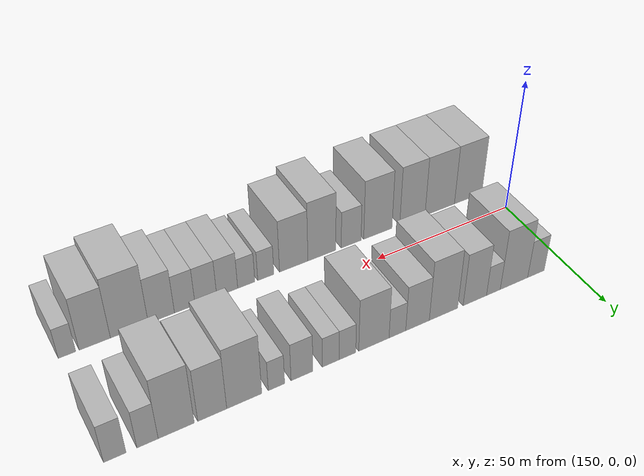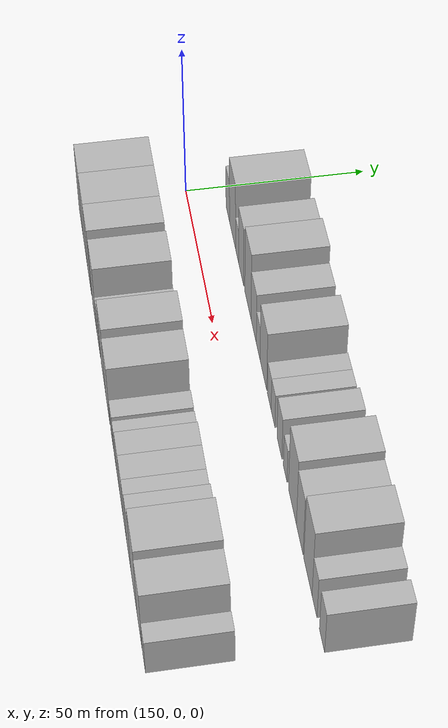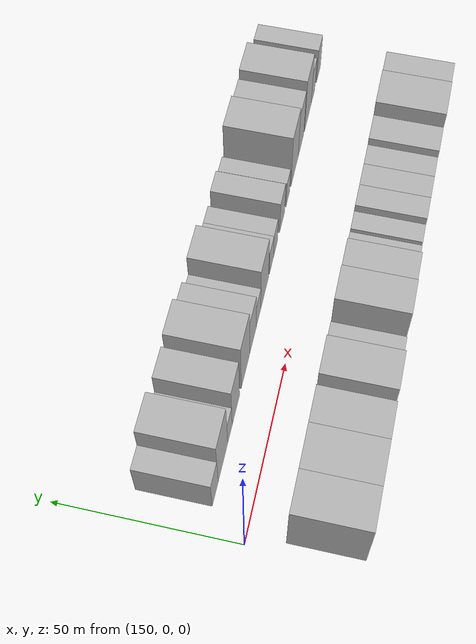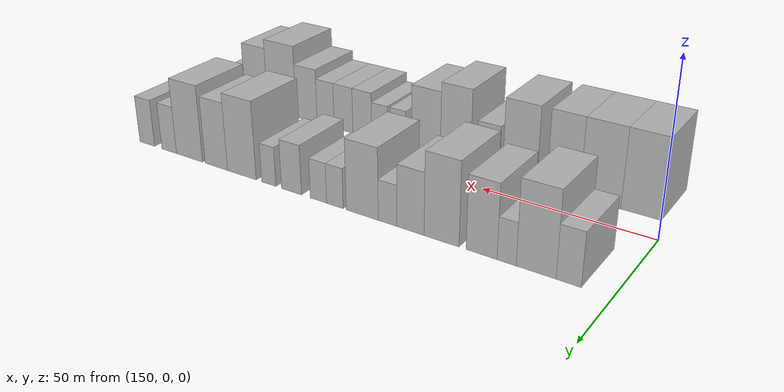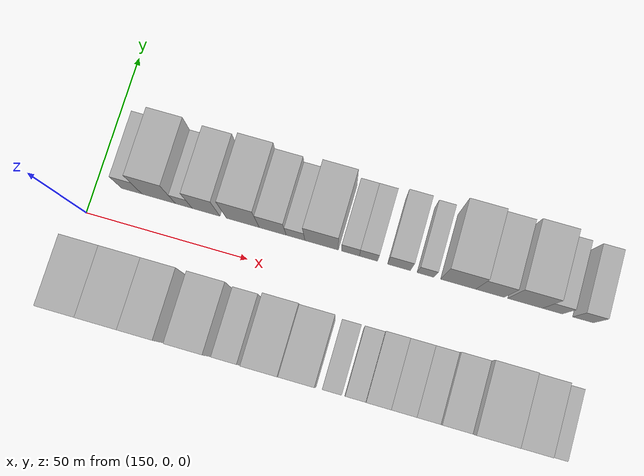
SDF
<sdf version="1.6">
 <world name="default">
  <model name="building_17">
   <static>1</static>
   <pose>160.9357 20.0000 0 0.000000 0.000000 1.570796</pose>
   <link name="link">
    <pose>0 0 7.50 0 0 0</pose>
    <collision name="collision"><geometry><box><size>20.0000 6.4339 15.0000</size></box></geometry></collision>
    <visual name="visual">
     <cast_shadows>0</cast_shadows>
     <geometry><box><size>20.0000 6.4339 15.0000</size></box></geometry>
     <material>
      <script>
       <uri>model://HANNAS_wall/materials/scripts</uri>
       <uri>model://HANNAS_wall/materials/textures</uri>
       <name>vrc/HANNAS_wall</name>
      </script>
     </material>
    </visual>
   </link>
  </model>
  <model name="building_18">
   <static>1</static>
   <pose>169.3864 20.0000 0 0.000000 0.000000 1.570796</pose>
   <link name="link">
    <pose>0 0 12.00 0 0 0</pose>
    <collision name="collision"><geometry><box><size>20.0000 10.4674 24.0000</size></box></geometry></collision>
    <visual name="visual">
     <cast_shadows>0</cast_shadows>
     <geometry><box><size>20.0000 10.4674 24.0000</size></box></geometry>
     <material>
      <script>
       <uri>model://HANNAS_wall/materials/scripts</uri>
       <uri>model://HANNAS_wall/materials/textures</uri>
       <name>vrc/HANNAS_wall</name>
      </script>
     </material>
    </visual>
   </link>
  </model>
  <model name="building_19">
   <static>1</static>
   <pose>177.2051 20.0000 0 0.000000 0.000000 1.570796</pose>
   <link name="link">
    <pose>0 0 6.00 0 0 0</pose>
    <collision name="collision"><geometry><box><size>20.0000 5.1700 12.0000</size></box></geometry></collision>
    <visual name="visual">
     <cast_shadows>0</cast_shadows>
     <geometry><box><size>20.0000 5.1700 12.0000</size></box></geometry>
     <material>
      <script>
       <uri>model://HANNAS_wall/materials/scripts</uri>
       <uri>model://HANNAS_wall/materials/textures</uri>
       <name>vrc/HANNAS_wall</name>
      </script>
     </material>
    </visual>
   </link>
  </model>
  <model name="building_20">
   <static>1</static>
   <pose>184.1034 20.0000 0 0.000000 0.000000 1.570796</pose>
   <link name="link">
    <pose>0 0 10.50 0 0 0</pose>
    <collision name="collision"><geometry><box><size>20.0000 8.6266 21.0000</size></box></geometry></collision>
    <visual name="visual">
     <cast_shadows>0</cast_shadows>
     <geometry><box><size>20.0000 8.6266 21.0000</size></box></geometry>
     <material>
      <script>
       <uri>model://HANNAS_wall/materials/scripts</uri>
       <uri>model://HANNAS_wall/materials/textures</uri>
       <name>vrc/HANNAS_wall</name>
      </script>
     </material>
    </visual>
   </link>
  </model>
  <model name="building_21">
   <static>1</static>
   <pose>195.5062 20.0000 0 0.000000 0.000000 1.570796</pose>
   <link name="link">
    <pose>0 0 12.00 0 0 0</pose>
    <collision name="collision"><geometry><box><size>20.0000 10.1790 24.0000</size></box></geometry></collision>
    <visual name="visual">
     <cast_shadows>0</cast_shadows>
     <geometry><box><size>20.0000 10.1790 24.0000</size></box></geometry>
     <material>
      <script>
       <uri>model://HANNAS_wall/materials/scripts</uri>
       <uri>model://HANNAS_wall/materials/textures</uri>
       <name>vrc/HANNAS_wall</name>
      </script>
     </material>
    </visual>
   </link>
  </model>
  <model name="building_22">
   <static>1</static>
   <pose>204.7365 20.0000 0 0.000000 0.000000 1.570796</pose>
   <link name="link">
    <pose>0 0 9.00 0 0 0</pose>
    <collision name="collision"><geometry><box><size>20.0000 8.2816 18.0000</size></box></geometry></collision>
    <visual name="visual">
     <cast_shadows>0</cast_shadows>
     <geometry><box><size>20.0000 8.2816 18.0000</size></box></geometry>
     <material>
      <script>
       <uri>model://HANNAS_wall/materials/scripts</uri>
       <uri>model://HANNAS_wall/materials/textures</uri>
       <name>vrc/HANNAS_wall</name>
      </script>
     </material>
    </visual>
   </link>
  </model>
  <model name="building_23">
   <static>1</static>
   <pose>211.7590 20.0000 0 0.000000 0.000000 1.570796</pose>
   <link name="link">
    <pose>0 0 6.00 0 0 0</pose>
    <collision name="collision"><geometry><box><size>20.0000 5.7634 12.0000</size></box></geometry></collision>
    <visual name="visual">
     <cast_shadows>0</cast_shadows>
     <geometry><box><size>20.0000 5.7634 12.0000</size></box></geometry>
     <material>
      <script>
       <uri>model://HANNAS_wall/materials/scripts</uri>
       <uri>model://HANNAS_wall/materials/textures</uri>
       <name>vrc/HANNAS_wall</name>
      </script>
     </material>
    </visual>
   </link>
  </model>
  <model name="building_24">
   <static>1</static>
   <pose>219.7592 20.0000 0 0.000000 0.000000 1.570796</pose>
   <link name="link">
    <pose>0 0 10.50 0 0 0</pose>
    <collision name="collision"><geometry><box><size>20.0000 10.2370 21.0000</size></box></geometry></collision>
    <visual name="visual">
     <cast_shadows>0</cast_shadows>
     <geometry><box><size>20.0000 10.2370 21.0000</size></box></geometry>
     <material>
      <script>
       <uri>model://HANNAS_wall/materials/scripts</uri>
       <uri>model://HANNAS_wall/materials/textures</uri>
       <name>vrc/HANNAS_wall</name>
      </script>
     </material>
    </visual>
   </link>
  </model>
  <model name="building_25">
   <static>1</static>
   <pose>228.6135 20.0000 0 0.000000 0.000000 1.570796</pose>
   <link name="link">
    <pose>0 0 6.00 0 0 0</pose>
    <collision name="collision"><geometry><box><size>20.0000 5.4715 12.0000</size></box></geometry></collision>
    <visual name="visual">
     <cast_shadows>0</cast_shadows>
     <geometry><box><size>20.0000 5.4715 12.0000</size></box></geometry>
     <material>
      <script>
       <uri>model://HANNAS_wall/materials/scripts</uri>
       <uri>model://HANNAS_wall/materials/textures</uri>
       <name>vrc/HANNAS_wall</name>
      </script>
     </material>
    </visual>
   </link>
  </model>
  <model name="building_26">
   <static>1</static>
   <pose>234.1191 20.0000 0 0.000000 0.000000 1.570796</pose>
   <link name="link">
    <pose>0 0 6.00 0 0 0</pose>
    <collision name="collision"><geometry><box><size>20.0000 5.5398 12.0000</size></box></geometry></collision>
    <visual name="visual">
     <cast_shadows>0</cast_shadows>
     <geometry><box><size>20.0000 5.5398 12.0000</size></box></geometry>
     <material>
      <script>
       <uri>model://HANNAS_wall/materials/scripts</uri>
       <uri>model://HANNAS_wall/materials/textures</uri>
       <name>vrc/HANNAS_wall</name>
      </script>
     </material>
    </visual>
   </link>
  </model>
  <model name="building_27">
   <static>1</static>
   <pose>243.3806 20.0000 0 0.000000 0.000000 1.570796</pose>
   <link name="link">
    <pose>0 0 7.50 0 0 0</pose>
    <collision name="collision"><geometry><box><size>20.0000 6.9831 15.0000</size></box></geometry></collision>
    <visual name="visual">
     <cast_shadows>0</cast_shadows>
     <geometry><box><size>20.0000 6.9831 15.0000</size></box></geometry>
     <material>
      <script>
       <uri>model://HANNAS_wall/materials/scripts</uri>
       <uri>model://HANNAS_wall/materials/textures</uri>
       <name>vrc/HANNAS_wall</name>
      </script>
     </material>
    </visual>
   </link>
  </model>
  <model name="building_28">
   <static>1</static>
   <pose>251.4328 20.0000 0 0.000000 0.000000 1.570796</pose>
   <link name="link">
    <pose>0 0 6.00 0 0 0</pose>
    <collision name="collision"><geometry><box><size>20.0000 5.1213 12.0000</size></box></geometry></collision>
    <visual name="visual">
     <cast_shadows>0</cast_shadows>
     <geometry><box><size>20.0000 5.1213 12.0000</size></box></geometry>
     <material>
      <script>
       <uri>model://HANNAS_wall/materials/scripts</uri>
       <uri>model://HANNAS_wall/materials/textures</uri>
       <name>vrc/HANNAS_wall</name>
      </script>
     </material>
    </visual>
   </link>
  </model>
  <model name="building_29">
   <static>1</static>
   <pose>261.3288 20.0000 0 0.000000 0.000000 1.570796</pose>
   <link name="link">
    <pose>0 0 12.00 0 0 0</pose>
    <collision name="collision"><geometry><box><size>20.0000 10.6708 24.0000</size></box></geometry></collision>
    <visual name="visual">
     <cast_shadows>0</cast_shadows>
     <geometry><box><size>20.0000 10.6708 24.0000</size></box></geometry>
     <material>
      <script>
       <uri>model://HANNAS_wall/materials/scripts</uri>
       <uri>model://HANNAS_wall/materials/textures</uri>
       <name>vrc/HANNAS_wall</name>
      </script>
     </material>
    </visual>
   </link>
  </model>
  <model name="building_30">
   <static>1</static>
   <pose>270.9674 20.0000 0 0.000000 0.000000 1.570796</pose>
   <link name="link">
    <pose>0 0 10.50 0 0 0</pose>
    <collision name="collision"><geometry><box><size>20.0000 8.6062 21.0000</size></box></geometry></collision>
    <visual name="visual">
     <cast_shadows>0</cast_shadows>
     <geometry><box><size>20.0000 8.6062 21.0000</size></box></geometry>
     <material>
      <script>
       <uri>model://HANNAS_wall/materials/scripts</uri>
       <uri>model://HANNAS_wall/materials/textures</uri>
       <name>vrc/HANNAS_wall</name>
      </script>
     </material>
    </visual>
   </link>
  </model>
  <model name="building_31">
   <static>1</static>
   <pose>281.4899 20.0000 0 0.000000 0.000000 1.570796</pose>
   <link name="link">
    <pose>0 0 12.00 0 0 0</pose>
    <collision name="collision"><geometry><box><size>20.0000 10.4389 24.0000</size></box></geometry></collision>
    <visual name="visual">
     <cast_shadows>0</cast_shadows>
     <geometry><box><size>20.0000 10.4389 24.0000</size></box></geometry>
     <material>
      <script>
       <uri>model://HANNAS_wall/materials/scripts</uri>
       <uri>model://HANNAS_wall/materials/textures</uri>
       <name>vrc/HANNAS_wall</name>
      </script>
     </material>
    </visual>
   </link>
  </model>
  <model name="building_32">
   <static>1</static>
   <pose>289.7101 20.0000 0 0.000000 0.000000 1.570796</pose>
   <link name="link">
    <pose>0 0 7.50 0 0 0</pose>
    <collision name="collision"><geometry><box><size>20.0000 6.0015 15.0000</size></box></geometry></collision>
    <visual name="visual">
     <cast_shadows>0</cast_shadows>
     <geometry><box><size>20.0000 6.0015 15.0000</size></box></geometry>
     <material>
      <script>
       <uri>model://HANNAS_wall/materials/scripts</uri>
       <uri>model://HANNAS_wall/materials/textures</uri>
       <name>vrc/HANNAS_wall</name>
      </script>
     </material>
    </visual>
   </link>
  </model>
  <model name="building_33">
   <static>1</static>
   <pose>298.8241 20.0000 0 0.000000 0.000000 1.570796</pose>
   <link name="link">
    <pose>0 0 7.50 0 0 0</pose>
    <collision name="collision"><geometry><box><size>20.0000 6.2265 15.0000</size></box></geometry></collision>
    <visual name="visual">
     <cast_shadows>0</cast_shadows>
     <geometry><box><size>20.0000 6.2265 15.0000</size></box></geometry>
     <material>
      <script>
       <uri>model://HANNAS_wall/materials/scripts</uri>
       <uri>model://HANNAS_wall/materials/textures</uri>
       <name>vrc/HANNAS_wall</name>
      </script>
     </material>
    </visual>
   </link>
  </model>
  <model name="building_48">
   <static>1</static>
   <pose>158.2835 -20.0000 0 0.000000 0.000000 1.570796</pose>
   <link name="link">
    <pose>0 0 12.00 0 0 0</pose>
    <collision name="collision"><geometry><box><size>20.0000 11.2238 24.0000</size></box></geometry></collision>
    <visual name="visual">
     <cast_shadows>0</cast_shadows>
     <geometry><box><size>20.0000 11.2238 24.0000</size></box></geometry>
     <material>
      <script>
       <uri>model://HANNAS_wall/materials/scripts</uri>
       <uri>model://HANNAS_wall/materials/textures</uri>
       <name>vrc/HANNAS_wall</name>
      </script>
     </material>
    </visual>
   </link>
  </model>
  <model name="building_49">
   <static>1</static>
   <pose>169.7892 -20.0000 0 0.000000 0.000000 1.570796</pose>
   <link name="link">
    <pose>0 0 12.00 0 0 0</pose>
    <collision name="collision"><geometry><box><size>20.0000 11.7876 24.0000</size></box></geometry></collision>
    <visual name="visual">
     <cast_shadows>0</cast_shadows>
     <geometry><box><size>20.0000 11.7876 24.0000</size></box></geometry>
     <material>
      <script>
       <uri>model://HANNAS_wall/materials/scripts</uri>
       <uri>model://HANNAS_wall/materials/textures</uri>
       <name>vrc/HANNAS_wall</name>
      </script>
     </material>
    </visual>
   </link>
  </model>
  <model name="building_50">
   <static>1</static>
   <pose>180.6211 -20.0000 0 0.000000 0.000000 1.570796</pose>
   <link name="link">
    <pose>0 0 12.00 0 0 0</pose>
    <collision name="collision"><geometry><box><size>20.0000 9.8762 24.0000</size></box></geometry></collision>
    <visual name="visual">
     <cast_shadows>0</cast_shadows>
     <geometry><box><size>20.0000 9.8762 24.0000</size></box></geometry>
     <material>
      <script>
       <uri>model://HANNAS_wall/materials/scripts</uri>
       <uri>model://HANNAS_wall/materials/textures</uri>
       <name>vrc/HANNAS_wall</name>
      </script>
     </material>
    </visual>
   </link>
  </model>
  <model name="building_51">
   <static>1</static>
   <pose>193.9153 -20.0000 0 0.000000 0.000000 1.570796</pose>
   <link name="link">
    <pose>0 0 12.00 0 0 0</pose>
    <collision name="collision"><geometry><box><size>20.0000 10.7122 24.0000</size></box></geometry></collision>
    <visual name="visual">
     <cast_shadows>0</cast_shadows>
     <geometry><box><size>20.0000 10.7122 24.0000</size></box></geometry>
     <material>
      <script>
       <uri>model://HANNAS_wall/materials/scripts</uri>
       <uri>model://HANNAS_wall/materials/textures</uri>
       <name>vrc/HANNAS_wall</name>
      </script>
     </material>
    </visual>
   </link>
  </model>
  <model name="building_52">
   <static>1</static>
   <pose>203.9388 -20.0000 0 0.000000 0.000000 1.570796</pose>
   <link name="link">
    <pose>0 0 7.50 0 0 0</pose>
    <collision name="collision"><geometry><box><size>20.0000 7.3349 15.0000</size></box></geometry></collision>
    <visual name="visual">
     <cast_shadows>0</cast_shadows>
     <geometry><box><size>20.0000 7.3349 15.0000</size></box></geometry>
     <material>
      <script>
       <uri>model://HANNAS_wall/materials/scripts</uri>
       <uri>model://HANNAS_wall/materials/textures</uri>
       <name>vrc/HANNAS_wall</name>
      </script>
     </material>
    </visual>
   </link>
  </model>
  <model name="building_53">
   <static>1</static>
   <pose>214.6639 -20.0000 0 0.000000 0.000000 1.570796</pose>
   <link name="link">
    <pose>0 0 12.00 0 0 0</pose>
    <collision name="collision"><geometry><box><size>20.0000 10.1152 24.0000</size></box></geometry></collision>
    <visual name="visual">
     <cast_shadows>0</cast_shadows>
     <geometry><box><size>20.0000 10.1152 24.0000</size></box></geometry>
     <material>
      <script>
       <uri>model://HANNAS_wall/materials/scripts</uri>
       <uri>model://HANNAS_wall/materials/textures</uri>
       <name>vrc/HANNAS_wall</name>
      </script>
     </material>
    </visual>
   </link>
  </model>
  <model name="building_54">
   <static>1</static>
   <pose>224.7370 -20.0000 0 0.000000 0.000000 1.570796</pose>
   <link name="link">
    <pose>0 0 10.50 0 0 0</pose>
    <collision name="collision"><geometry><box><size>20.0000 10.0311 21.0000</size></box></geometry></collision>
    <visual name="visual">
     <cast_shadows>0</cast_shadows>
     <geometry><box><size>20.0000 10.0311 21.0000</size></box></geometry>
     <material>
      <script>
       <uri>model://HANNAS_wall/materials/scripts</uri>
       <uri>model://HANNAS_wall/materials/textures</uri>
       <name>vrc/HANNAS_wall</name>
      </script>
     </material>
    </visual>
   </link>
  </model>
  <model name="building_55">
   <static>1</static>
   <pose>234.5355 -20.0000 0 0.000000 0.000000 1.570796</pose>
   <link name="link">
    <pose>0 0 6.00 0 0 0</pose>
    <collision name="collision"><geometry><box><size>20.0000 5.5658 12.0000</size></box></geometry></collision>
    <visual name="visual">
     <cast_shadows>0</cast_shadows>
     <geometry><box><size>20.0000 5.5658 12.0000</size></box></geometry>
     <material>
      <script>
       <uri>model://HANNAS_wall/materials/scripts</uri>
       <uri>model://HANNAS_wall/materials/textures</uri>
       <name>vrc/HANNAS_wall</name>
      </script>
     </material>
    </visual>
   </link>
  </model>
  <model name="building_56">
   <static>1</static>
   <pose>241.2391 -20.0000 0 0.000000 0.000000 1.570796</pose>
   <link name="link">
    <pose>0 0 6.00 0 0 0</pose>
    <collision name="collision"><geometry><box><size>20.0000 5.8416 12.0000</size></box></geometry></collision>
    <visual name="visual">
     <cast_shadows>0</cast_shadows>
     <geometry><box><size>20.0000 5.8416 12.0000</size></box></geometry>
     <material>
      <script>
       <uri>model://HANNAS_wall/materials/scripts</uri>
       <uri>model://HANNAS_wall/materials/textures</uri>
       <name>vrc/HANNAS_wall</name>
      </script>
     </material>
    </visual>
   </link>
  </model>
  <model name="building_57">
   <static>1</static>
   <pose>247.6698 -20.0000 0 0.000000 0.000000 1.570796</pose>
   <link name="link">
    <pose>0 0 7.50 0 0 0</pose>
    <collision name="collision"><geometry><box><size>20.0000 7.0196 15.0000</size></box></geometry></collision>
    <visual name="visual">
     <cast_shadows>0</cast_shadows>
     <geometry><box><size>20.0000 7.0196 15.0000</size></box></geometry>
     <material>
      <script>
       <uri>model://HANNAS_wall/materials/scripts</uri>
       <uri>model://HANNAS_wall/materials/textures</uri>
       <name>vrc/HANNAS_wall</name>
      </script>
     </material>
    </visual>
   </link>
  </model>
  <model name="building_58">
   <static>1</static>
   <pose>254.7539 -20.0000 0 0.000000 0.000000 1.570796</pose>
   <link name="link">
    <pose>0 0 7.50 0 0 0</pose>
    <collision name="collision"><geometry><box><size>20.0000 7.1487 15.0000</size></box></geometry></collision>
    <visual name="visual">
     <cast_shadows>0</cast_shadows>
     <geometry><box><size>20.0000 7.1487 15.0000</size></box></geometry>
     <material>
      <script>
       <uri>model://HANNAS_wall/materials/scripts</uri>
       <uri>model://HANNAS_wall/materials/textures</uri>
       <name>vrc/HANNAS_wall</name>
      </script>
     </material>
    </visual>
   </link>
  </model>
  <model name="building_59">
   <static>1</static>
   <pose>261.6729 -20.0000 0 0.000000 0.000000 1.570796</pose>
   <link name="link">
    <pose>0 0 7.50 0 0 0</pose>
    <collision name="collision"><geometry><box><size>20.0000 6.6892 15.0000</size></box></geometry></collision>
    <visual name="visual">
     <cast_shadows>0</cast_shadows>
     <geometry><box><size>20.0000 6.6892 15.0000</size></box></geometry>
     <material>
      <script>
       <uri>model://HANNAS_wall/materials/scripts</uri>
       <uri>model://HANNAS_wall/materials/textures</uri>
       <name>vrc/HANNAS_wall</name>
      </script>
     </material>
    </visual>
   </link>
  </model>
  <model name="building_60">
   <static>1</static>
   <pose>269.2048 -20.0000 0 0.000000 0.000000 1.570796</pose>
   <link name="link">
    <pose>0 0 9.00 0 0 0</pose>
    <collision name="collision"><geometry><box><size>20.0000 8.3747 18.0000</size></box></geometry></collision>
    <visual name="visual">
     <cast_shadows>0</cast_shadows>
     <geometry><box><size>20.0000 8.3747 18.0000</size></box></geometry>
     <material>
      <script>
       <uri>model://HANNAS_wall/materials/scripts</uri>
       <uri>model://HANNAS_wall/materials/textures</uri>
       <name>vrc/HANNAS_wall</name>
      </script>
     </material>
    </visual>
   </link>
  </model>
  <model name="building_61">
   <static>1</static>
   <pose>279.2775 -20.0000 0 0.000000 0.000000 1.570796</pose>
   <link name="link">
    <pose>0 0 12.00 0 0 0</pose>
    <collision name="collision"><geometry><box><size>20.0000 11.7707 24.0000</size></box></geometry></collision>
    <visual name="visual">
     <cast_shadows>0</cast_shadows>
     <geometry><box><size>20.0000 11.7707 24.0000</size></box></geometry>
     <material>
      <script>
       <uri>model://HANNAS_wall/materials/scripts</uri>
       <uri>model://HANNAS_wall/materials/textures</uri>
       <name>vrc/HANNAS_wall</name>
      </script>
     </material>
    </visual>
   </link>
  </model>
  <model name="building_62">
   <static>1</static>
   <pose>289.9084 -20.0000 0 0.000000 0.000000 1.570796</pose>
   <link name="link">
    <pose>0 0 10.50 0 0 0</pose>
    <collision name="collision"><geometry><box><size>20.0000 9.4911 21.0000</size></box></geometry></collision>
    <visual name="visual">
     <cast_shadows>0</cast_shadows>
     <geometry><box><size>20.0000 9.4911 21.0000</size></box></geometry>
     <material>
      <script>
       <uri>model://HANNAS_wall/materials/scripts</uri>
       <uri>model://HANNAS_wall/materials/textures</uri>
       <name>vrc/HANNAS_wall</name>
      </script>
     </material>
    </visual>
   </link>
  </model>
  <model name="building_63">
   <static>1</static>
   <pose>298.2607 -20.0000 0 0.000000 0.000000 1.570796</pose>
   <link name="link">
    <pose>0 0 6.00 0 0 0</pose>
    <collision name="collision"><geometry><box><size>20.0000 5.2134 12.0000</size></box></geometry></collision>
    <visual name="visual">
     <cast_shadows>0</cast_shadows>
     <geometry><box><size>20.0000 5.2134 12.0000</size></box></geometry>
     <material>
      <script>
       <uri>model://HANNAS_wall/materials/scripts</uri>
       <uri>model://HANNAS_wall/materials/textures</uri>
       <name>vrc/HANNAS_wall</name>
      </script>
     </material>
    </visual>
   </link>
  </model>
 </world>
</sdf>
